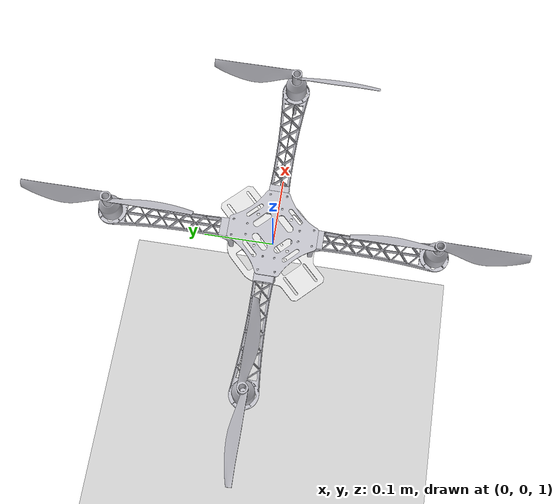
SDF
<?xml version="1.0" ?>
<sdf version="1.7">
  <world name="empty_world">
  <plugin filename="gz-sim-imu-system"
        name="gz::sim::systems::Imu">
    </plugin>
        <physics name="1ms" type="ignored">
            <max_step_size>0.001</max_step_size>
            <real_time_factor>1.0</real_time_factor>
        </physics>
        <plugin
            filename="gz-sim-physics-system"
            name="gz::sim::systems::Physics">
        </plugin>
        <plugin
            filename="gz-sim-user-commands-system"
            name="gz::sim::systems::UserCommands">
        </plugin>
        <plugin
            filename="gz-sim-scene-broadcaster-system"
            name="gz::sim::systems::SceneBroadcaster">
        </plugin>

        <plugin
            filename="gz-sim-sensors-system"
            name="gz::sim::systems::Sensors">
            <render_engine>ogre2</render_engine>
        </plugin>

        <light type="directional" name="sun">
            <cast_shadows>true</cast_shadows>
            <pose>0 0 10 0 0 0</pose>
            <diffuse>0.8 0.8 0.8 1</diffuse>
            <specular>0.2 0.2 0.2 1</specular>
            <attenuation>
                <range>1000</range>
                <constant>0.9</constant>
                <linear>0.01</linear>
                <quadratic>0.001</quadratic>
            </attenuation>
            <direction>-0.5 0.1 -0.9</direction>
        </light>

        <model name="ground_plane">
            <static>true</static>
            <link name="link">
                <collision name="collision">
                <geometry>
                    <plane>
                    <normal>0 0 1</normal>
                    </plane>
                </geometry>
                </collision>
                <visual name="visual">
                <geometry>
                    <plane>
                    <normal>0 0 1</normal>
                    <size>100 100</size>
                    </plane>
                </geometry>
                <material>
                    <ambient>0.8 0.8 0.8 1</ambient>
                    <diffuse>0.8 0.8 0.8 1</diffuse>
                    <specular>0.8 0.8 0.8 1</specular>
                </material>
                </visual>
            </link>
        </model>
    <include>
      <uri>file:///home/dave/ros2_ws/src/f450_base/models/f450b/model.sdf</uri>
      <pose>0 0 1 0 0 0</pose>
      <name>f450b</name>
      <plugin
        filename="gz-sim-odometry-publisher-system"
        name="gz::sim::systems::OdometryPublisher">
        <dimensions>3</dimensions>
      </plugin>
    </include>
  </world>
</sdf>

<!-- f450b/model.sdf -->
<sdf version='1.11'>
  <model name='f450b'>
    <link name='base_link'>
      <inertial>
        <pose>-0.0005456098818315562 0.00180118096679425 0.039882195334129462 0 0 0</pose>
        <mass>1.3844524451885569</mass>
        <inertia>
          <ixx>0.017101596347502711</ixx>
          <ixy>-6.0205325930367639e-06</ixy>
          <ixz>-3.1027595017258758e-05</ixz>
          <iyy>0.017100076444824301</iyy>
          <iyz>-1.0639420660573099e-05</iyz>
          <izz>0.033420539623219683</izz>
        </inertia>
      </inertial>
      <collision name='base_link_collision'>
        <pose>0 0 0 0 0 0</pose>
        <geometry>
          <mesh>
            <scale>0.001 0.001 0.001</scale>
            <uri>file:///home/dave/ros2_ws/install/f450_base/share/f450_base/meshes/base_link.stl</uri>
          </mesh>
        </geometry>
      </collision>
      <collision name='base_link_fixed_joint_lump__imu_link_collision_1'>
        <pose>0 0 0.02 0 0 0</pose>
        <geometry>
          <box>
            <size>0.01 0.01 0.01</size>
          </box>
        </geometry>
        <surface>
          <contact>
            <ode/>
          </contact>
          <friction>
            <ode/>
          </friction>
        </surface>
      </collision>
      <collision name='base_link_fixed_joint_lump__arm_2_collision_2'>
        <pose>0 0 0 0 0 0</pose>
        <geometry>
          <mesh>
            <scale>0.001 0.001 0.001</scale>
            <uri>file:///home/dave/ros2_ws/install/f450_base/share/f450_base/meshes/arm_2.stl</uri>
          </mesh>
        </geometry>
        <surface>
          <contact>
            <ode/>
          </contact>
          <friction>
            <ode>
              <mu>0.20000000000000001</mu>
              <mu2>0.20000000000000001</mu2>
            </ode>
          </friction>
        </surface>
      </collision>
      <collision name='base_link_fixed_joint_lump__motor_4_collision_3'>
        <pose>6.9388939039072284e-18 0 3.4694469519536142e-18 0 0 0</pose>
        <geometry>
          <mesh>
            <scale>0.001 0.001 0.001</scale>
            <uri>file:///home/dave/ros2_ws/install/f450_base/share/f450_base/meshes/motor_4.stl</uri>
          </mesh>
        </geometry>
        <surface>
          <contact>
            <ode/>
          </contact>
          <friction>
            <ode>
              <mu>0.20000000000000001</mu>
              <mu2>0.20000000000000001</mu2>
            </ode>
          </friction>
        </surface>
      </collision>
      <collision name='base_link_fixed_joint_lump__base_top_v10_1_collision_4'>
        <pose>-6.9388939039072284e-18 0 -3.4694469519536142e-18 0 0 0</pose>
        <geometry>
          <mesh>
            <scale>0.001 0.001 0.001</scale>
            <uri>file:///home/dave/ros2_ws/install/f450_base/share/f450_base/meshes/base_top_v10_1.stl</uri>
          </mesh>
        </geometry>
        <surface>
          <contact>
            <ode/>
          </contact>
          <friction>
            <ode>
              <mu>0.20000000000000001</mu>
              <mu2>0.20000000000000001</mu2>
            </ode>
          </friction>
        </surface>
      </collision>
      <collision name='base_link_fixed_joint_lump__arm_3_collision_5'>
        <pose>0 0 0 0 0 0</pose>
        <geometry>
          <mesh>
            <scale>0.001 0.001 0.001</scale>
            <uri>file:///home/dave/ros2_ws/install/f450_base/share/f450_base/meshes/arm_3.stl</uri>
          </mesh>
        </geometry>
        <surface>
          <contact>
            <ode/>
          </contact>
          <friction>
            <ode>
              <mu>0.20000000000000001</mu>
              <mu2>0.20000000000000001</mu2>
            </ode>
          </friction>
        </surface>
      </collision>
      <collision name='base_link_fixed_joint_lump__motor_3_collision_6'>
        <pose>1.387778780781446e-17 0 -3.4694469519536142e-18 0 0 0</pose>
        <geometry>
          <mesh>
            <scale>0.001 0.001 0.001</scale>
            <uri>file:///home/dave/ros2_ws/install/f450_base/share/f450_base/meshes/motor_3.stl</uri>
          </mesh>
        </geometry>
        <surface>
          <contact>
            <ode/>
          </contact>
          <friction>
            <ode>
              <mu>0.20000000000000001</mu>
              <mu2>0.20000000000000001</mu2>
            </ode>
          </friction>
        </surface>
      </collision>
      <collision name='base_link_fixed_joint_lump__arm_4_collision_7'>
        <pose>0 0 0 0 0 0</pose>
        <geometry>
          <mesh>
            <scale>0.001 0.001 0.001</scale>
            <uri>file:///home/dave/ros2_ws/install/f450_base/share/f450_base/meshes/arm_4.stl</uri>
          </mesh>
        </geometry>
        <surface>
          <contact>
            <ode/>
          </contact>
          <friction>
            <ode>
              <mu>0.20000000000000001</mu>
              <mu2>0.20000000000000001</mu2>
            </ode>
          </friction>
        </surface>
      </collision>
      <collision name='base_link_fixed_joint_lump__motor_2_collision_8'>
        <pose>0 6.9388939039072284e-18 5.2041704279304213e-18 0 0 0</pose>
        <geometry>
          <mesh>
            <scale>0.001 0.001 0.001</scale>
            <uri>file:///home/dave/ros2_ws/install/f450_base/share/f450_base/meshes/motor_2.stl</uri>
          </mesh>
        </geometry>
        <surface>
          <contact>
            <ode/>
          </contact>
          <friction>
            <ode>
              <mu>0.20000000000000001</mu>
              <mu2>0.20000000000000001</mu2>
            </ode>
          </friction>
        </surface>
      </collision>
      <collision name='base_link_fixed_joint_lump__arm_5_collision_9'>
        <pose>0 0 0 0 0 0</pose>
        <geometry>
          <mesh>
            <scale>0.001 0.001 0.001</scale>
            <uri>file:///home/dave/ros2_ws/install/f450_base/share/f450_base/meshes/arm_5.stl</uri>
          </mesh>
        </geometry>
        <surface>
          <contact>
            <ode/>
          </contact>
          <friction>
            <ode>
              <mu>0.20000000000000001</mu>
              <mu2>0.20000000000000001</mu2>
            </ode>
          </friction>
        </surface>
      </collision>
      <collision name='base_link_fixed_joint_lump__motor_1_collision_10'>
        <pose>0 0 0 0 0 0</pose>
        <geometry>
          <mesh>
            <scale>0.001 0.001 0.001</scale>
            <uri>file:///home/dave/ros2_ws/install/f450_base/share/f450_base/meshes/motor_1.stl</uri>
          </mesh>
        </geometry>
        <surface>
          <contact>
            <ode/>
          </contact>
          <friction>
            <ode>
              <mu>0.20000000000000001</mu>
              <mu2>0.20000000000000001</mu2>
            </ode>
          </friction>
        </surface>
      </collision>
      <visual name='base_link_visual'>
        <pose>0 0 0 0 0 0</pose>
        <geometry>
          <mesh>
            <scale>0.001 0.001 0.001</scale>
            <uri>file:///home/dave/ros2_ws/install/f450_base/share/f450_base/meshes/base_link.stl</uri>
          </mesh>
        </geometry>
        <material>
          <diffuse>0.875 0.875 0.875 1</diffuse>
          <ambient>0.875 0.875 0.875 1</ambient>
        </material>
      </visual>
      <visual name='base_link_fixed_joint_lump__imu_link_visual_1'>
        <pose>0 0 0.02 0 0 0</pose>
        <geometry>
          <box>
            <size>0.01 0.01 0.01</size>
          </box>
        </geometry>
        <material>
          <diffuse>0.875 0.875 0.875 1</diffuse>
          <ambient>0.875 0.875 0.875 1</ambient>
        </material>
      </visual>
      <visual name='base_link_fixed_joint_lump__arm_2_visual_2'>
        <pose>0 0 0 0 0 0</pose>
        <geometry>
          <mesh>
            <scale>0.001 0.001 0.001</scale>
            <uri>file:///home/dave/ros2_ws/install/f450_base/share/f450_base/meshes/arm_2.stl</uri>
          </mesh>
        </geometry>
        <material>
          <script>
            <name>Gazebo/Silver</name>
            <uri>file://media/materials/scripts/gazebo.material</uri>
          </script>
          <diffuse>0.875 0.875 0.875 1</diffuse>
          <ambient>0.875 0.875 0.875 1</ambient>
        </material>
      </visual>
      <visual name='base_link_fixed_joint_lump__motor_4_visual_3'>
        <pose>6.9388939039072284e-18 0 3.4694469519536142e-18 0 0 0</pose>
        <geometry>
          <mesh>
            <scale>0.001 0.001 0.001</scale>
            <uri>file:///home/dave/ros2_ws/install/f450_base/share/f450_base/meshes/motor_4.stl</uri>
          </mesh>
        </geometry>
        <material>
          <script>
            <name>Gazebo/Silver</name>
            <uri>file://media/materials/scripts/gazebo.material</uri>
          </script>
          <diffuse>0.875 0.875 0.875 1</diffuse>
          <ambient>0.875 0.875 0.875 1</ambient>
        </material>
      </visual>
      <visual name='base_link_fixed_joint_lump__base_top_v10_1_visual_4'>
        <pose>-6.9388939039072284e-18 0 -3.4694469519536142e-18 0 0 0</pose>
        <geometry>
          <mesh>
            <scale>0.001 0.001 0.001</scale>
            <uri>file:///home/dave/ros2_ws/install/f450_base/share/f450_base/meshes/base_top_v10_1.stl</uri>
          </mesh>
        </geometry>
        <material>
          <script>
            <name>Gazebo/Silver</name>
            <uri>file://media/materials/scripts/gazebo.material</uri>
          </script>
          <diffuse>0.875 0.875 0.875 1</diffuse>
          <ambient>0.875 0.875 0.875 1</ambient>
        </material>
      </visual>
      <visual name='base_link_fixed_joint_lump__arm_3_visual_5'>
        <pose>0 0 0 0 0 0</pose>
        <geometry>
          <mesh>
            <scale>0.001 0.001 0.001</scale>
            <uri>file:///home/dave/ros2_ws/install/f450_base/share/f450_base/meshes/arm_3.stl</uri>
          </mesh>
        </geometry>
        <material>
          <script>
            <name>Gazebo/Silver</name>
            <uri>file://media/materials/scripts/gazebo.material</uri>
          </script>
          <diffuse>0.875 0.875 0.875 1</diffuse>
          <ambient>0.875 0.875 0.875 1</ambient>
        </material>
      </visual>
      <visual name='base_link_fixed_joint_lump__motor_3_visual_6'>
        <pose>1.387778780781446e-17 0 -3.4694469519536142e-18 0 0 0</pose>
        <geometry>
          <mesh>
            <scale>0.001 0.001 0.001</scale>
            <uri>file:///home/dave/ros2_ws/install/f450_base/share/f450_base/meshes/motor_3.stl</uri>
          </mesh>
        </geometry>
        <material>
          <script>
            <name>Gazebo/Silver</name>
            <uri>file://media/materials/scripts/gazebo.material</uri>
          </script>
          <diffuse>0.875 0.875 0.875 1</diffuse>
          <ambient>0.875 0.875 0.875 1</ambient>
        </material>
      </visual>
      <visual name='base_link_fixed_joint_lump__arm_4_visual_7'>
        <pose>0 0 0 0 0 0</pose>
        <geometry>
          <mesh>
            <scale>0.001 0.001 0.001</scale>
            <uri>file:///home/dave/ros2_ws/install/f450_base/share/f450_base/meshes/arm_4.stl</uri>
          </mesh>
        </geometry>
        <material>
          <script>
            <name>Gazebo/Silver</name>
            <uri>file://media/materials/scripts/gazebo.material</uri>
          </script>
          <diffuse>0.875 0.875 0.875 1</diffuse>
          <ambient>0.875 0.875 0.875 1</ambient>
        </material>
      </visual>
      <visual name='base_link_fixed_joint_lump__motor_2_visual_8'>
        <pose>0 6.9388939039072284e-18 5.2041704279304213e-18 0 0 0</pose>
        <geometry>
          <mesh>
            <scale>0.001 0.001 0.001</scale>
            <uri>file:///home/dave/ros2_ws/install/f450_description/share/f450_description/meshes/motor_2.stl</uri>
          </mesh>
        </geometry>
        <material>
          <script>
            <name>Gazebo/Silver</name>
            <uri>file://media/materials/scripts/gazebo.material</uri>
          </script>
          <diffuse>0.875 0.875 0.875 1</diffuse>
          <ambient>0.875 0.875 0.875 1</ambient>
        </material>
      </visual>
      <visual name='base_link_fixed_joint_lump__arm_5_visual_9'>
        <pose>0 0 0 0 0 0</pose>
        <geometry>
          <mesh>
            <scale>0.001 0.001 0.001</scale>
            <uri>file:///home/dave/ros2_ws/install/f450_base/share/f450_base/meshes/arm_5.stl</uri>
          </mesh>
        </geometry>
        <material>
          <script>
            <name>Gazebo/Silver</name>
            <uri>file://media/materials/scripts/gazebo.material</uri>
          </script>
          <diffuse>0.875 0.875 0.875 1</diffuse>
          <ambient>0.875 0.875 0.875 1</ambient>
        </material>
      </visual>
      <visual name='base_link_fixed_joint_lump__motor_1_visual_10'>
        <pose>0 0 0 0 0 0</pose>
        <geometry>
          <mesh>
            <scale>0.001 0.001 0.001</scale>
            <uri>file:///home/dave/ros2_ws/install/f450_base/share/f450_base/meshes/motor_1.stl</uri>
          </mesh>
        </geometry>
        <material>
          <script>
            <name>Gazebo/Silver</name>
            <uri>file://media/materials/scripts/gazebo.material</uri>
          </script>
          <diffuse>0.875 0.875 0.875 1</diffuse>
          <ambient>0.875 0.875 0.875 1</ambient>
        </material>
      </visual>
      <sensor name='imu_sensor' type='imu'>
        <always_on>true</always_on>
        <update_rate>100</update_rate>
        <visualize>false</visualize>
        <topic>imu</topic>
        <plugin name='gz::sim::systems::Imu' filename='gz-sim-imu-system'/>
        <pose>0 0 0.02 0 0 0</pose>
        <imu/>
      </sensor>
      <self_collide>true</self_collide>
      <self_collide>true</self_collide>
      <self_collide>true</self_collide>
      <self_collide>true</self_collide>
      <self_collide>true</self_collide>
      <self_collide>true</self_collide>
      <self_collide>true</self_collide>
      <self_collide>true</self_collide>
      <self_collide>true</self_collide>
    </link>
    <joint name='rev_4' type='revolute'>
      <pose relative_to='base_link'>0.22594500000000001 0.00089499999999999996 0.075026999999999996 0 0 0</pose>
      <parent>base_link</parent>
      <child>propellor_2_1</child>
      <axis>
        <xyz>0.0020609999999999999 0.00075900000000000002 -0.99999800000000005</xyz>
        <limit>
          <lower>-inf</lower>
          <upper>inf</upper>
        </limit>
        <dynamics>
          <spring_reference>0</spring_reference>
          <spring_stiffness>0</spring_stiffness>
        </dynamics>
      </axis>
    </joint>
    <link name='propellor_2_1'>
      <pose relative_to='rev_4'>0 0 0 0 0 0</pose>
      <inertial>
        <pose>-2.0604968456766629e-05 -1.0296088685228129e-06 0.01018340641224692 0 0 0</pose>
        <mass>0.048646751013652553</mass>
        <inertia>
          <ixx>0.000173</ixx>
          <ixy>0</ixy>
          <ixz>0</ixz>
          <iyy>1.9999999999999999e-06</iyy>
          <iyz>0</iyz>
          <izz>0.000173</izz>
        </inertia>
      </inertial>
      <collision name='propellor_2_1_collision'>
        <pose>-0.22594500000000001 -0.00089499999999999996 -0.075026999999999996 0 0 0</pose>
        <geometry>
          <mesh>
            <scale>0.001 0.001 0.001</scale>
            <uri>file:///home/dave/ros2_ws/install/f450_base/share/f450_base/meshes/propellor_2_1.stl</uri>
          </mesh>
        </geometry>
        <surface>
          <contact>
            <ode/>
          </contact>
          <friction>
            <ode>
              <mu>0.20000000000000001</mu>
              <mu2>0.20000000000000001</mu2>
            </ode>
          </friction>
        </surface>
      </collision>
      <visual name='propellor_2_1_visual'>
        <pose>-0.22594500000000001 -0.00089499999999999996 -0.075026999999999996 0 0 0</pose>
        <geometry>
          <mesh>
            <scale>0.001 0.001 0.001</scale>
            <uri>file:///home/dave/ros2_ws/install/f450_base/share/f450_base/meshes/propellor_2_1.stl</uri>
          </mesh>
        </geometry>
        <material>
          <script>
            <name>Gazebo/Silver</name>
            <uri>file://media/materials/scripts/gazebo.material</uri>
          </script>
          <diffuse>0.875 0.875 0.875 1</diffuse>
          <ambient>0.875 0.875 0.875 1</ambient>
        </material>
      </visual>
      <self_collide>true</self_collide>
    </link>
    <joint name='rev_1' type='revolute'>
      <pose relative_to='base_link'>-0.22662399999999999 0.0028969999999999998 0.074096000000000009 0 0 0</pose>
      <parent>base_link</parent>
      <child>propellor_1_1</child>
      <axis>
        <xyz>0.0020609999999999999 0.00075900000000000002 -0.99999800000000005</xyz>
        <limit>
          <lower>-inf</lower>
          <upper>inf</upper>
        </limit>
        <dynamics>
          <spring_reference>0</spring_reference>
          <spring_stiffness>0</spring_stiffness>
        </dynamics>
      </axis>
    </joint>
    <link name='propellor_1_1'>
      <pose relative_to='rev_1'>0 0 0 0 0 0</pose>
      <inertial>
        <pose>-2.12039339774206e-05 -5.4492414743503156e-06 0.0066597530361613283 0 0 0</pose>
        <mass>0.045968326244657187</mass>
        <inertia>
          <ixx>1.9999999999999999e-06</ixx>
          <ixy>9.9999999999999995e-07</ixy>
          <ixz>0</ixz>
          <iyy>0.000173</iyy>
          <iyz>0</iyz>
          <izz>0.000173</izz>
        </inertia>
      </inertial>
      <collision name='propellor_1_1_collision'>
        <pose>0.22662399999999999 -0.0028969999999999998 -0.074095999999999995 0 0 0</pose>
        <geometry>
          <mesh>
            <scale>0.001 0.001 0.001</scale>
            <uri>file:///home/dave/ros2_ws/install/f450_base/share/f450_base/meshes/propellor_1_1.stl</uri>
          </mesh>
        </geometry>
        <surface>
          <contact>
            <ode/>
          </contact>
          <friction>
            <ode>
              <mu>0.20000000000000001</mu>
              <mu2>0.20000000000000001</mu2>
            </ode>
          </friction>
        </surface>
      </collision>
      <visual name='propellor_1_1_visual'>
        <pose>0.22662399999999999 -0.0028969999999999998 -0.074095999999999995 0 0 0</pose>
        <geometry>
          <mesh>
            <scale>0.001 0.001 0.001</scale>
            <uri>file:///home/dave/ros2_ws/install/f450_base/share/f450_base/meshes/propellor_1_1.stl</uri>
          </mesh>
        </geometry>
        <material>
          <script>
            <name>Gazebo/Silver</name>
            <uri>file://media/materials/scripts/gazebo.material</uri>
          </script>
          <diffuse>0.875 0.875 0.875 1</diffuse>
          <ambient>0.875 0.875 0.875 1</ambient>
        </material>
      </visual>
      <self_collide>true</self_collide>
    </link>
    <joint name='rev_3' type='revolute'>
      <pose relative_to='base_link'>-0.00072200000000000042 -0.224388 0.074388999999999997 0 0 0</pose>
      <parent>base_link</parent>
      <child>propellor_1_2</child>
      <axis>
        <xyz>0.0020609999999999999 0.00075900000000000002 -0.99999800000000005</xyz>
        <limit>
          <lower>-inf</lower>
          <upper>inf</upper>
        </limit>
        <dynamics>
          <spring_reference>0</spring_reference>
          <spring_stiffness>0</spring_stiffness>
        </dynamics>
      </axis>
    </joint>
    <link name='propellor_1_2'>
      <pose relative_to='rev_3'>0 0 0 0 0 0</pose>
      <inertial>
        <pose>-1.3434893079237079e-05 -1.2514295851306921e-05 0.0066599982117770407 0 0 0</pose>
        <mass>0.045968326244657187</mass>
        <inertia>
          <ixx>0.000173</ixx>
          <ixy>-9.9999999999999995e-07</ixy>
          <ixz>0</ixz>
          <iyy>1.9999999999999999e-06</iyy>
          <iyz>0</iyz>
          <izz>0.000173</izz>
        </inertia>
      </inertial>
      <collision name='propellor_1_2_collision'>
        <pose>0.00072199999999999999 0.224388 -0.074388999999999997 0 0 0</pose>
        <geometry>
          <mesh>
            <scale>0.001 0.001 0.001</scale>
            <uri>file:///home/dave/ros2_ws/install/f450_base/share/f450_base/meshes/propellor_1_2.stl</uri>
          </mesh>
        </geometry>
        <surface>
          <contact>
            <ode/>
          </contact>
          <friction>
            <ode>
              <mu>0.20000000000000001</mu>
              <mu2>0.20000000000000001</mu2>
            </ode>
          </friction>
        </surface>
      </collision>
      <visual name='propellor_1_2_visual'>
        <pose>0.00072199999999999999 0.224388 -0.074388999999999997 0 0 0</pose>
        <geometry>
          <mesh>
            <scale>0.001 0.001 0.001</scale>
            <uri>file:///home/dave/ros2_ws/install/f450_base/share/f450_base/meshes/propellor_1_2.stl</uri>
          </mesh>
        </geometry>
        <material>
          <script>
            <name>Gazebo/Silver</name>
            <uri>file://media/materials/scripts/gazebo.material</uri>
          </script>
          <diffuse>0.875 0.875 0.875 1</diffuse>
          <ambient>0.875 0.875 0.875 1</ambient>
        </material>
      </visual>
      <self_collide>true</self_collide>
    </link>
    <joint name='rev_2' type='revolute'>
      <pose relative_to='base_link'>-0.0011169999999999999 0.22820599999999999 0.074731999999999993 0 0 0</pose>
      <parent>base_link</parent>
      <child>propellor_2_2</child>
      <axis>
        <xyz>0.0020609999999999999 0.00075900000000000002 -0.99999800000000005</xyz>
        <limit>
          <lower>-inf</lower>
          <upper>inf</upper>
        </limit>
        <dynamics>
          <spring_reference>0</spring_reference>
          <spring_stiffness>0</spring_stiffness>
        </dynamics>
      </axis>
    </joint>
    <link name='propellor_2_2'>
      <pose relative_to='rev_2'>0 0 0 0 0 0</pose>
      <inertial>
        <pose>-2.0559666656236359e-05 -8.7759879383031425e-07 0.0101828006910968 0 0 0</pose>
        <mass>0.048646751013652553</mass>
        <inertia>
          <ixx>0.000173</ixx>
          <ixy>0</ixy>
          <ixz>0</ixz>
          <iyy>1.9999999999999999e-06</iyy>
          <iyz>0</iyz>
          <izz>0.000173</izz>
        </inertia>
      </inertial>
      <collision name='propellor_2_2_collision'>
        <pose>0.0011169999999999999 -0.22820599999999999 -0.074732000000000007 0 0 0</pose>
        <geometry>
          <mesh>
            <scale>0.001 0.001 0.001</scale>
            <uri>file:///home/dave/ros2_ws/install/f450_base/share/f450_base/meshes/propellor_2_2.stl</uri>
          </mesh>
        </geometry>
        <surface>
          <contact>
            <ode/>
          </contact>
          <friction>
            <ode>
              <mu>0.20000000000000001</mu>
              <mu2>0.20000000000000001</mu2>
            </ode>
          </friction>
        </surface>
      </collision>
      <visual name='propellor_2_2_visual'>
        <pose>0.0011169999999999999 -0.22820599999999999 -0.074732000000000007 0 0 0</pose>
        <geometry>
          <mesh>
            <scale>0.001 0.001 0.001</scale>
            <uri>file:///home/dave/ros2_ws/install/f450_base/share/f450_base/meshes/propellor_2_2.stl</uri>
          </mesh>
        </geometry>
        <material>
          <script>
            <name>Gazebo/Silver</name>
            <uri>file://media/materials/scripts/gazebo.material</uri>
          </script>
          <diffuse>0.875 0.875 0.875 1</diffuse>
          <ambient>0.875 0.875 0.875 1</ambient>
        </material>
      </visual>
      <self_collide>true</self_collide>
    </link>
    <plugin name='gz::sim::systems::MulticopterMotorModel' filename='gz-sim-multicopter-motor-model-system'>
      <robotNamespace>f450b</robotNamespace>
      <jointName>rev_4</jointName>
      <linkName>propellor_2_1</linkName>
      <turningDirection>cw</turningDirection>
      <timeConstantUp>0.0125</timeConstantUp>
      <timeConstantDown>0.025</timeConstantDown>
      <maxRotVelocity>5000.0</maxRotVelocity>
      <motorConstant>8.54858e-06</motorConstant>
      <momentConstant>0.016</momentConstant>
      <commandSubTopic>gazebo/command/motor_speed</commandSubTopic>
      <actuator_number>0</actuator_number>
      <rotorDragCoefficient>8.06428e-05</rotorDragCoefficient>
      <rollingMomentCoefficient>1e-06</rollingMomentCoefficient>
      <motorSpeedPubTopic>motor_speed/0</motorSpeedPubTopic>
      <rotorVelocitySlowdownSim>10</rotorVelocitySlowdownSim>
      <motorType>velocity</motorType>
    </plugin>
    <plugin name='gz::sim::systems::MulticopterMotorModel' filename='gz-sim-multicopter-motor-model-system'>
      <robotNamespace>f450b</robotNamespace>
      <jointName>rev_2</jointName>
      <linkName>propellor_2_2</linkName>
      <turningDirection>cw</turningDirection>
      <timeConstantUp>0.0125</timeConstantUp>
      <timeConstantDown>0.025</timeConstantDown>
      <maxRotVelocity>5000.0</maxRotVelocity>
      <motorConstant>8.54858e-06</motorConstant>
      <momentConstant>0.016</momentConstant>
      <commandSubTopic>gazebo/command/motor_speed</commandSubTopic>
      <actuator_number>1</actuator_number>
      <rotorDragCoefficient>8.06428e-05</rotorDragCoefficient>
      <rollingMomentCoefficient>1e-06</rollingMomentCoefficient>
      <motorSpeedPubTopic>motor_speed/1</motorSpeedPubTopic>
      <rotorVelocitySlowdownSim>10</rotorVelocitySlowdownSim>
      <motorType>velocity</motorType>
    </plugin>
    <plugin name='gz::sim::systems::MulticopterMotorModel' filename='gz-sim-multicopter-motor-model-system'>
      <robotNamespace>f450b</robotNamespace>
      <jointName>rev_1</jointName>
      <linkName>propellor_1_1</linkName>
      <turningDirection>ccw</turningDirection>
      <timeConstantUp>0.0125</timeConstantUp>
      <timeConstantDown>0.025</timeConstantDown>
      <maxRotVelocity>5000.0</maxRotVelocity>
      <motorConstant>8.54858e-06</motorConstant>
      <momentConstant>0.016</momentConstant>
      <commandSubTopic>gazebo/command/motor_speed</commandSubTopic>
      <actuator_number>2</actuator_number>
      <rotorDragCoefficient>8.06428e-05</rotorDragCoefficient>
      <rollingMomentCoefficient>1e-06</rollingMomentCoefficient>
      <motorSpeedPubTopic>motor_speed/2</motorSpeedPubTopic>
      <rotorVelocitySlowdownSim>10</rotorVelocitySlowdownSim>
      <motorType>velocity</motorType>
    </plugin>
    <plugin name='gz::sim::systems::MulticopterMotorModel' filename='gz-sim-multicopter-motor-model-system'>
      <robotNamespace>f450b</robotNamespace>
      <jointName>rev_3</jointName>
      <linkName>propellor_1_2</linkName>
      <turningDirection>ccw</turningDirection>
      <timeConstantUp>0.0125</timeConstantUp>
      <timeConstantDown>0.025</timeConstantDown>
      <maxRotVelocity>5000.0</maxRotVelocity>
      <motorConstant>8.54858e-06</motorConstant>
      <momentConstant>0.016</momentConstant>
      <commandSubTopic>gazebo/command/motor_speed</commandSubTopic>
      <actuator_number>3</actuator_number>
      <rotorDragCoefficient>8.06428e-05</rotorDragCoefficient>
      <rollingMomentCoefficient>1e-06</rollingMomentCoefficient>
      <motorSpeedPubTopic>motor_speed/3</motorSpeedPubTopic>
      <rotorVelocitySlowdownSim>10</rotorVelocitySlowdownSim>
      <motorType>velocity</motorType>
    </plugin>

    <plugin name='gz::sim::systems::OdometryPublisher' filename='gz-sim-odometry-publisher-system'>
        <robotNamespace>/f450b</robotNamespace>
        <odom_publish_frequency>50</odom_publish_frequency>
        <odom_topic>/f450b/odom</odom_topic>
        <odom_frame>odom</odom_frame>
        <robot_base_frame>base_link</robot_base_frame>
        <dimensions>3</dimensions>
    </plugin>

    <plugin
        filename="gz-sim-multicopter-control-system"
        name="gz::sim::systems::MulticopterVelocityControl">
        <robotNamespace>f450b</robotNamespace>
        <commandSubTopic>gazebo/command/twist</commandSubTopic>
        <enableSubTopic>enable</enableSubTopic>
        <comLinkName>base_link</comLinkName>
        <velocityGain>0.1 0.1 0.1</velocityGain>
        <attitudeGain>0.1 0.1 0.1</attitudeGain>
        <angularRateGain>0.4 0.52 0.18</angularRateGain>
        <maximumLinearAcceleration>2 2 2</maximumLinearAcceleration>

        <rotorConfiguration>
          <rotor>
            <jointName>rev_4</jointName>
            <forceConstant>8.54858e-06</forceConstant>
            <momentConstant>0.016</momentConstant>
            <direction>1</direction>
          </rotor>
          <rotor>
            <jointName>rev_2</jointName>
            <forceConstant>8.54858e-06</forceConstant>
            <momentConstant>0.016</momentConstant>
            <direction>-1</direction>
          </rotor>
          <rotor>
            <jointName>rev_1</jointName>
            <forceConstant>8.54858e-06</forceConstant>
            <momentConstant>0.016</momentConstant>
            <direction>-1</direction>
          </rotor>
          <rotor>
            <jointName>rev_3</jointName>
            <forceConstant>8.54858e-06</forceConstant>
            <momentConstant>0.016</momentConstant>
            <direction>1</direction>
          </rotor>
        </rotorConfiguration>
   </plugin>

    <frame name='imu_joint' attached_to='base_link'>
      <pose>0 0 0.02 0 0 0</pose>
    </frame>
    <frame name='imu_link' attached_to='imu_joint'>
      <pose>0 0 0 0 0 0</pose>
    </frame>
    <frame name='r_10' attached_to='arm_2'>
      <pose>0.169817 0.01027 0.035108 0 0 0</pose>
    </frame>
    <frame name='motor_4' attached_to='r_10'>
      <pose>0 0 0 0 0 0</pose>
    </frame>
    <frame name='r_5' attached_to='arm_2'>
      <pose>0.0053330000000000001 0.010774000000000001 0.039019999999999999 0 0 0</pose>
    </frame>
    <frame name='base_top_v10_1' attached_to='r_5'>
      <pose>0 0 0 0 0 0</pose>
    </frame>
    <frame name='r_1' attached_to='base_link'>
      <pose>0.056191999999999999 -0.0093509999999999999 0.0089189999999999998 0 0 0</pose>
    </frame>
    <frame name='arm_2' attached_to='r_1'>
      <pose>0 0 0 0 0 0</pose>
    </frame>
    <frame name='r_8' attached_to='arm_3'>
      <pose>-0.16996 -0.010322 0.034391999999999999 0 0 0</pose>
    </frame>
    <frame name='motor_3' attached_to='r_8'>
      <pose>0 0 0 0 0 0</pose>
    </frame>
    <frame name='r_2' attached_to='base_link'>
      <pose>-0.056599999999999998 0.013243 0.0087039999999999999 0 0 0</pose>
    </frame>
    <frame name='arm_3' attached_to='r_2'>
      <pose>0 0 0 0 0 0</pose>
    </frame>
    <frame name='r_9' attached_to='arm_4'>
      <pose>-0.011415 -0.169849 0.034597000000000003 0 0 0</pose>
    </frame>
    <frame name='motor_2' attached_to='r_9'>
      <pose>0 0 0 0 0 0</pose>
    </frame>
    <frame name='r_3' attached_to='base_link'>
      <pose>0.010756999999999999 -0.054516000000000002 0.0087919999999999995 0 0 0</pose>
    </frame>
    <frame name='arm_4' attached_to='r_3'>
      <pose>0 0 0 0 0 0</pose>
    </frame>
    <frame name='r_11' attached_to='arm_5'>
      <pose>-0.010366999999999999 0.16986299999999999 0.034858 0 0 0</pose>
    </frame>
    <frame name='motor_1' attached_to='r_11'>
      <pose>0 0 0 0 0 0</pose>
    </frame>
    <frame name='r_4' attached_to='base_link'>
      <pose>0.0093139999999999994 0.058367000000000002 0.0088739999999999999 0 0 0</pose>
    </frame>
    <frame name='arm_5' attached_to='r_4'>
      <pose>0 0 0 0 0 0</pose>
    </frame>
  </model>
</sdf>
